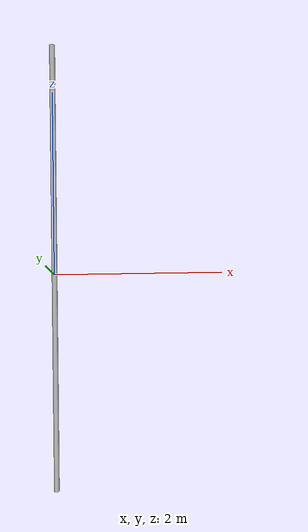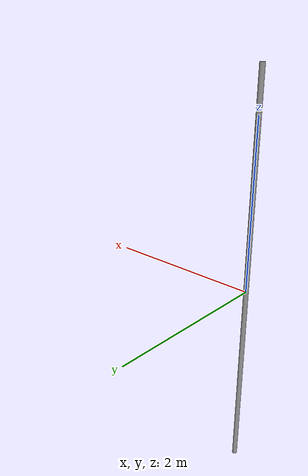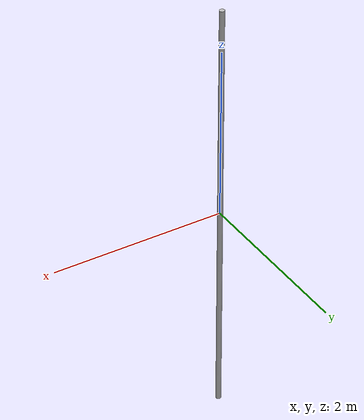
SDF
<?xml version='1.0'?>
<sdf version='1.4'>
  <model name="powerline">
       <static>true</static>
       <link name="powerline">
        <pose>0 0 0 0 0 0</pose>
        <collision name="collision">
          <geometry>
            <cylinder>
              <radius>0.03</radius>
              <length>5</length>
            </cylinder>
          </geometry>
        </collision>
        <visual name="visual">
          <geometry>
            <cylinder>
              <radius>0.03</radius>
              <length>5</length>
            </cylinder>
          </geometry>
        </visual>
      </link>
  </model>
</sdf>
